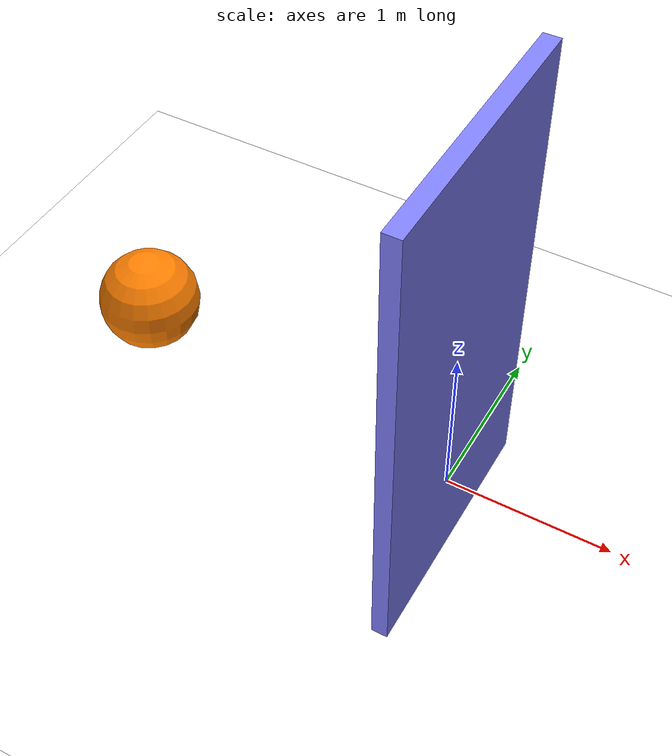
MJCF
<mujoco model="scene4_occlusion">
  <compiler angle="radian"/>

  <option timestep="0.002" gravity="0 0 -9.81">
    <flag contact="disable"/>
  </option>

  <visual>
    <global offwidth="800" offheight="800"/>
    <quality shadowsize="4096"/>
  </visual>

  <asset>
    <texture name="white_skybox"
             type="skybox"
             builtin="flat"
             width="512"
             height="512"
             rgb1="1 1 1"
             rgb2="1 1 1"/>
    <material name="white_floor" rgba="1 1 1 1" reflectance="0"/>
  </asset>

  <worldbody>
    <light directional="true" pos="0 0 3" dir="0 0 -1" diffuse="0.8 0.8 0.8"/>
    <light directional="true" pos="2 2 3" dir="-0.5 -0.5 -1" diffuse="0.4 0.4 0.4"/>

    <geom name="floor"
          type="plane"
          size="5 5 0.1"
          material="white_floor"
          pos="0 0 -0.5"/>

    <body name="target" pos="0 0 0.5">
      <site name="target_site" size="0.01" rgba="1 0 0 0"/>
    </body>

    <!-- Moving sphere -->
    <body name="sphere" pos="-2.0 0 0.5">
      <freejoint/>
      <geom name="sphere_geom" type="sphere" size="0.3" rgba="1.0 0.5 0.0 1" mass="1"/>
    </body>

    <!-- Occluding wall (narrower) -->
    <body name="wall" pos="0 0 1.0">
      <freejoint/>
      <geom name="wall_geom" type="box" size="0.05 0.8 1.5" rgba="0.5 0.5 1.0 1"/>
    </body>

    <!-- Cameras scaled 1.5x for 800x800 square resolution — sphere orbits at 1.8m radius -->
    <camera name="cam0" pos="5.25 0 2.25" mode="targetbody" target="target" fovy="50"/>
    <camera name="cam1" pos="0 5.25 2.25" mode="targetbody" target="target" fovy="50"/>
    <camera name="cam2" pos="-5.25 0 2.25" mode="targetbody" target="target" fovy="50"/>
    <camera name="cam3" pos="0 -5.25 2.25" mode="targetbody" target="target" fovy="50"/>
    <camera name="cam4" pos="4.2 4.2 3.75" mode="targetbody" target="target" fovy="50"/>
    <camera name="cam5" pos="-4.2 4.2 3.75" mode="targetbody" target="target" fovy="50"/>
    <camera name="cam6" pos="4.2 -4.2 3.75" mode="targetbody" target="target" fovy="50"/>
    <camera name="cam7" pos="-4.2 -4.2 3.75" mode="targetbody" target="target" fovy="50"/>
    <camera name="cam8" pos="3.75 0 1.2" mode="targetbody" target="target" fovy="55"/>
    <camera name="cam9" pos="-3.75 0 1.2" mode="targetbody" target="target" fovy="55"/>
    <camera name="cam10" pos="0 0 6.0" mode="targetbody" target="target" fovy="45"/>
    <camera name="cam11" pos="2.25 2.25 5.25" mode="targetbody" target="target" fovy="45"/>
  </worldbody>
</mujoco>
